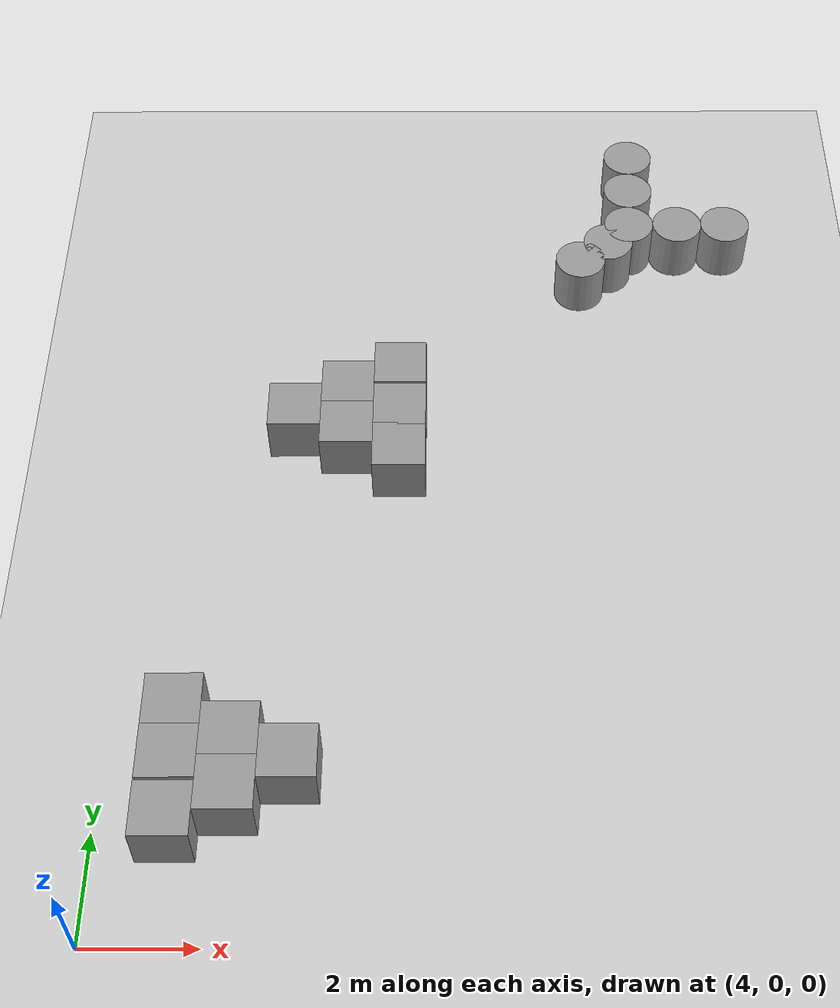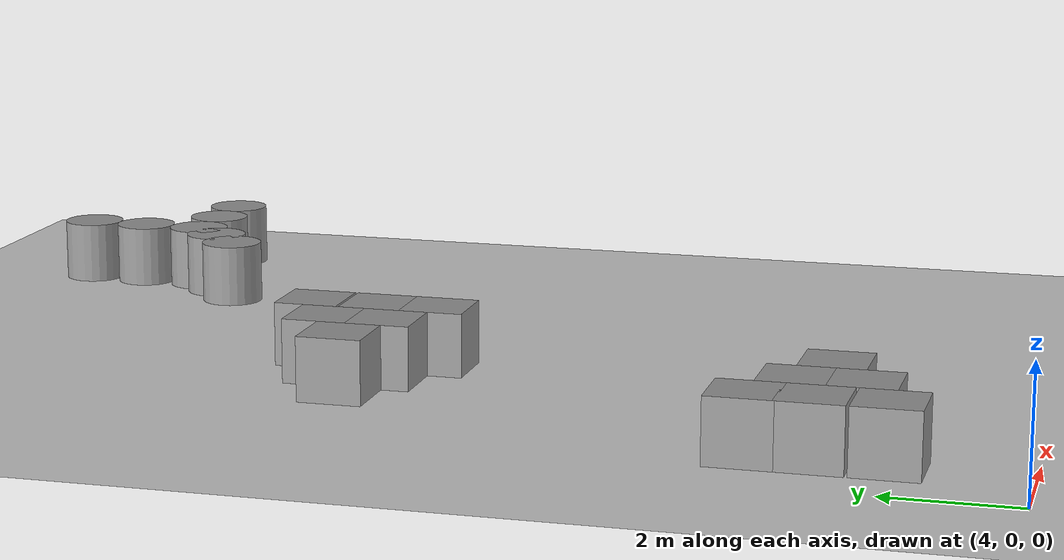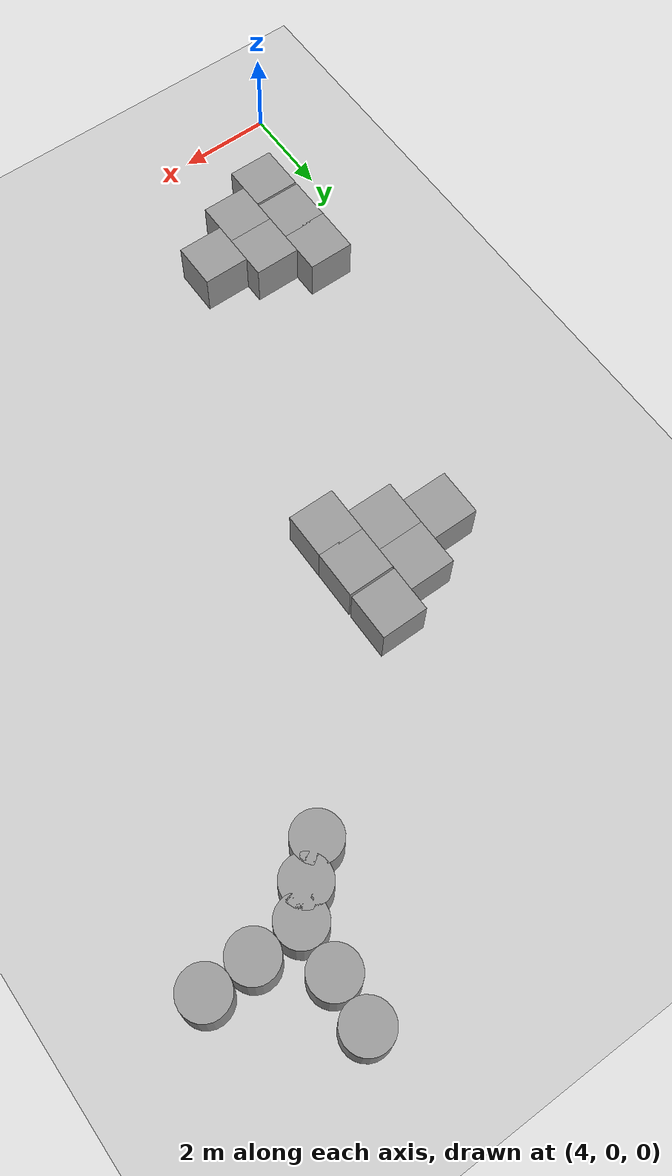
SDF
<sdf version="1.6">
 <world name="default">
  <model name="ground_plane">
   <static>1</static>
   <link name="link">
    <collision name="collision">
     <geometry><plane><normal>0 0 1</normal><size>100 100</size></plane></geometry>
     <surface><friction><ode><mu>100</mu><mu2>50</mu2></ode></friction></surface>
    </collision>
    <visual name="visual">
     <cast_shadows>0</cast_shadows>
     <geometry><plane><normal>0 0 1</normal><size>100 100</size></plane></geometry>
     <material>
      <script><uri>file://media/materials/scripts/gazebo.material</uri><name>Gazebo/Grey</name></script>
     </material>
    </visual>
   </link>
  </model>
  <model name="machine1">
   <link name="link_0">
    <pose>0.666667 -1.0048 0 0 -0 0</pose>
    <inertial>
     <mass>1</mass>
     <inertia>
      <ixx>0.166667</ixx>
      <ixy>0</ixy>
      <ixz>0</ixz>
      <iyy>0.166667</iyy>
      <iyz>0</iyz>
      <izz>0.166667</izz>
     </inertia>
    </inertial>
    <visual name="visual">
     <geometry><box><size>1 1 1</size></box></geometry>
     <material>
      <lighting>1</lighting>
      <script><uri>file://media/materials/scripts/gazebo.material</uri><name>Gazebo/Grey</name></script>
      <ambient>0.3 0.3 0.3 1</ambient>
      <diffuse>0.7 0.7 0.7 1</diffuse>
      <specular>0.01 0.01 0.01 1</specular>
      <emissive>0 0 0 1</emissive>
     </material>
    </visual>
    <collision name="collision">
     <geometry><box><size>1 1 1</size></box></geometry>
     <surface>
      <friction>
       <ode><mu>1</mu><mu2>1</mu2><fdir1>0 0 0</fdir1><slip1>0</slip1><slip2>0</slip2></ode>
       <torsional>
        <coefficient>1</coefficient>
        <patch_radius>0</patch_radius>
        <surface_radius>0</surface_radius>
        <use_patch_radius>1</use_patch_radius>
        <ode><slip>0</slip></ode>
       </torsional>
      </friction>
      <bounce><restitution_coefficient>0</restitution_coefficient><threshold>1e+06</threshold></bounce>
      <contact>
       <collide_without_contact>0</collide_without_contact>
       <collide_without_contact_bitmask>1</collide_without_contact_bitmask>
       <collide_bitmask>1</collide_bitmask>
       <ode>
        <soft_cfm>0</soft_cfm>
        <soft_erp>0.2</soft_erp>
        <kp>1e+13</kp>
        <kd>1</kd>
        <max_vel>0.01</max_vel>
        <min_depth>0</min_depth>
       </ode>
       <bullet>
        <split_impulse>1</split_impulse>
        <split_impulse_penetration_threshold>-0.01</split_impulse_penetration_threshold>
        <soft_cfm>0</soft_cfm>
        <soft_erp>0.2</soft_erp>
        <kp>1e+13</kp>
        <kd>1</kd>
       </bullet>
      </contact>
     </surface>
    </collision>
   </link>
   <link name="link_1">
    <pose>0.666667 -0.036067 0 0 -0 0</pose>
    <inertial>
     <mass>1</mass>
     <inertia>
      <ixx>0.166667</ixx>
      <ixy>0</ixy>
      <ixz>0</ixz>
      <iyy>0.166667</iyy>
      <iyz>0</iyz>
      <izz>0.166667</izz>
     </inertia>
    </inertial>
    <visual name="visual">
     <geometry><box><size>1 1 1</size></box></geometry>
     <material>
      <lighting>1</lighting>
      <script><uri>file://media/materials/scripts/gazebo.material</uri><name>Gazebo/Grey</name></script>
      <ambient>0.3 0.3 0.3 1</ambient>
      <diffuse>0.7 0.7 0.7 1</diffuse>
      <specular>0.01 0.01 0.01 1</specular>
      <emissive>0 0 0 1</emissive>
     </material>
    </visual>
    <collision name="collision">
     <geometry><box><size>1 1 1</size></box></geometry>
     <surface>
      <friction>
       <ode><mu>1</mu><mu2>1</mu2><fdir1>0 0 0</fdir1><slip1>0</slip1><slip2>0</slip2></ode>
       <torsional>
        <coefficient>1</coefficient>
        <patch_radius>0</patch_radius>
        <surface_radius>0</surface_radius>
        <use_patch_radius>1</use_patch_radius>
        <ode><slip>0</slip></ode>
       </torsional>
      </friction>
      <bounce><restitution_coefficient>0</restitution_coefficient><threshold>1e+06</threshold></bounce>
      <contact>
       <collide_without_contact>0</collide_without_contact>
       <collide_without_contact_bitmask>1</collide_without_contact_bitmask>
       <collide_bitmask>1</collide_bitmask>
       <ode>
        <soft_cfm>0</soft_cfm>
        <soft_erp>0.2</soft_erp>
        <kp>1e+13</kp>
        <kd>1</kd>
        <max_vel>0.01</max_vel>
        <min_depth>0</min_depth>
       </ode>
       <bullet>
        <split_impulse>1</split_impulse>
        <split_impulse_penetration_threshold>-0.01</split_impulse_penetration_threshold>
        <soft_cfm>0</soft_cfm>
        <soft_erp>0.2</soft_erp>
        <kp>1e+13</kp>
        <kd>1</kd>
       </bullet>
      </contact>
     </surface>
    </collision>
   </link>
   <link name="link_2">
    <pose>0.666667 1.00722 0 0 -0 0</pose>
    <inertial>
     <mass>1</mass>
     <inertia>
      <ixx>0.166667</ixx>
      <ixy>0</ixy>
      <ixz>0</ixz>
      <iyy>0.166667</iyy>
      <iyz>0</iyz>
      <izz>0.166667</izz>
     </inertia>
    </inertial>
    <visual name="visual">
     <geometry><box><size>1 1 1</size></box></geometry>
     <material>
      <lighting>1</lighting>
      <script><uri>file://media/materials/scripts/gazebo.material</uri><name>Gazebo/Grey</name></script>
      <ambient>0.3 0.3 0.3 1</ambient>
      <diffuse>0.7 0.7 0.7 1</diffuse>
      <specular>0.01 0.01 0.01 1</specular>
      <emissive>0 0 0 1</emissive>
     </material>
    </visual>
    <collision name="collision">
     <geometry><box><size>1 1 1</size></box></geometry>
     <surface>
      <friction>
       <ode><mu>1</mu><mu2>1</mu2><fdir1>0 0 0</fdir1><slip1>0</slip1><slip2>0</slip2></ode>
       <torsional>
        <coefficient>1</coefficient>
        <patch_radius>0</patch_radius>
        <surface_radius>0</surface_radius>
        <use_patch_radius>1</use_patch_radius>
        <ode><slip>0</slip></ode>
       </torsional>
      </friction>
      <bounce><restitution_coefficient>0</restitution_coefficient><threshold>1e+06</threshold></bounce>
      <contact>
       <collide_without_contact>0</collide_without_contact>
       <collide_without_contact_bitmask>1</collide_without_contact_bitmask>
       <collide_bitmask>1</collide_bitmask>
       <ode>
        <soft_cfm>0</soft_cfm>
        <soft_erp>0.2</soft_erp>
        <kp>1e+13</kp>
        <kd>1</kd>
        <max_vel>0.01</max_vel>
        <min_depth>0</min_depth>
       </ode>
       <bullet>
        <split_impulse>1</split_impulse>
        <split_impulse_penetration_threshold>-0.01</split_impulse_penetration_threshold>
        <soft_cfm>0</soft_cfm>
        <soft_erp>0.2</soft_erp>
        <kp>1e+13</kp>
        <kd>1</kd>
       </bullet>
      </contact>
     </surface>
    </collision>
   </link>
   <link name="link_3">
    <pose>-0.333333 0.53488 0 0 -0 0</pose>
    <inertial>
     <mass>1</mass>
     <inertia>
      <ixx>0.166667</ixx>
      <ixy>0</ixy>
      <ixz>0</ixz>
      <iyy>0.166667</iyy>
      <iyz>0</iyz>
      <izz>0.166667</izz>
     </inertia>
    </inertial>
    <visual name="visual">
     <geometry><box><size>1 1 1</size></box></geometry>
     <material>
      <lighting>1</lighting>
      <script><uri>file://media/materials/scripts/gazebo.material</uri><name>Gazebo/Grey</name></script>
      <ambient>0.3 0.3 0.3 1</ambient>
      <diffuse>0.7 0.7 0.7 1</diffuse>
      <specular>0.01 0.01 0.01 1</specular>
      <emissive>0 0 0 1</emissive>
     </material>
    </visual>
    <collision name="collision">
     <geometry><box><size>1 1 1</size></box></geometry>
     <surface>
      <friction>
       <ode><mu>1</mu><mu2>1</mu2><fdir1>0 0 0</fdir1><slip1>0</slip1><slip2>0</slip2></ode>
       <torsional>
        <coefficient>1</coefficient>
        <patch_radius>0</patch_radius>
        <surface_radius>0</surface_radius>
        <use_patch_radius>1</use_patch_radius>
        <ode><slip>0</slip></ode>
       </torsional>
      </friction>
      <bounce><restitution_coefficient>0</restitution_coefficient><threshold>1e+06</threshold></bounce>
      <contact>
       <collide_without_contact>0</collide_without_contact>
       <collide_without_contact_bitmask>1</collide_without_contact_bitmask>
       <collide_bitmask>1</collide_bitmask>
       <ode>
        <soft_cfm>0</soft_cfm>
        <soft_erp>0.2</soft_erp>
        <kp>1e+13</kp>
        <kd>1</kd>
        <max_vel>0.01</max_vel>
        <min_depth>0</min_depth>
       </ode>
       <bullet>
        <split_impulse>1</split_impulse>
        <split_impulse_penetration_threshold>-0.01</split_impulse_penetration_threshold>
        <soft_cfm>0</soft_cfm>
        <soft_erp>0.2</soft_erp>
        <kp>1e+13</kp>
        <kd>1</kd>
       </bullet>
      </contact>
     </surface>
    </collision>
   </link>
   <link name="link_4">
    <pose>-0.333333 -0.46512 0 0 -0 0</pose>
    <inertial>
     <mass>1</mass>
     <inertia>
      <ixx>0.166667</ixx>
      <ixy>0</ixy>
      <ixz>0</ixz>
      <iyy>0.166667</iyy>
      <iyz>0</iyz>
      <izz>0.166667</izz>
     </inertia>
    </inertial>
    <visual name="visual">
     <geometry><box><size>1 1 1</size></box></geometry>
     <material>
      <lighting>1</lighting>
      <script><uri>file://media/materials/scripts/gazebo.material</uri><name>Gazebo/Grey</name></script>
      <ambient>0.3 0.3 0.3 1</ambient>
      <diffuse>0.7 0.7 0.7 1</diffuse>
      <specular>0.01 0.01 0.01 1</specular>
      <emissive>0 0 0 1</emissive>
     </material>
    </visual>
    <collision name="collision">
     <geometry><box><size>1 1 1</size></box></geometry>
     <surface>
      <friction>
       <ode><mu>1</mu><mu2>1</mu2><fdir1>0 0 0</fdir1><slip1>0</slip1><slip2>0</slip2></ode>
       <torsional>
        <coefficient>1</coefficient>
        <patch_radius>0</patch_radius>
        <surface_radius>0</surface_radius>
        <use_patch_radius>1</use_patch_radius>
        <ode><slip>0</slip></ode>
       </torsional>
      </friction>
      <bounce><restitution_coefficient>0</restitution_coefficient><threshold>1e+06</threshold></bounce>
      <contact>
       <collide_without_contact>0</collide_without_contact>
       <collide_without_contact_bitmask>1</collide_without_contact_bitmask>
       <collide_bitmask>1</collide_bitmask>
       <ode>
        <soft_cfm>0</soft_cfm>
        <soft_erp>0.2</soft_erp>
        <kp>1e+13</kp>
        <kd>1</kd>
        <max_vel>0.01</max_vel>
        <min_depth>0</min_depth>
       </ode>
       <bullet>
        <split_impulse>1</split_impulse>
        <split_impulse_penetration_threshold>-0.01</split_impulse_penetration_threshold>
        <soft_cfm>0</soft_cfm>
        <soft_erp>0.2</soft_erp>
        <kp>1e+13</kp>
        <kd>1</kd>
       </bullet>
      </contact>
     </surface>
    </collision>
   </link>
   <link name="link_5">
    <pose>-1.33333 -0.036128 0 0 -0 0</pose>
    <inertial>
     <mass>1</mass>
     <inertia>
      <ixx>0.166667</ixx>
      <ixy>0</ixy>
      <ixz>0</ixz>
      <iyy>0.166667</iyy>
      <iyz>0</iyz>
      <izz>0.166667</izz>
     </inertia>
    </inertial>
    <visual name="visual">
     <geometry><box><size>1 1 1</size></box></geometry>
     <material>
      <lighting>1</lighting>
      <script><uri>file://media/materials/scripts/gazebo.material</uri><name>Gazebo/Grey</name></script>
      <ambient>0.3 0.3 0.3 1</ambient>
      <diffuse>0.7 0.7 0.7 1</diffuse>
      <specular>0.01 0.01 0.01 1</specular>
      <emissive>0 0 0 1</emissive>
     </material>
    </visual>
    <collision name="collision">
     <geometry><box><size>1 1 1</size></box></geometry>
     <surface>
      <friction>
       <ode><mu>1</mu><mu2>1</mu2><fdir1>0 0 0</fdir1><slip1>0</slip1><slip2>0</slip2></ode>
       <torsional>
        <coefficient>1</coefficient>
        <patch_radius>0</patch_radius>
        <surface_radius>0</surface_radius>
        <use_patch_radius>1</use_patch_radius>
        <ode><slip>0</slip></ode>
       </torsional>
      </friction>
      <bounce><restitution_coefficient>0</restitution_coefficient><threshold>1e+06</threshold></bounce>
      <contact>
       <collide_without_contact>0</collide_without_contact>
       <collide_without_contact_bitmask>1</collide_without_contact_bitmask>
       <collide_bitmask>1</collide_bitmask>
       <ode>
        <soft_cfm>0</soft_cfm>
        <soft_erp>0.2</soft_erp>
        <kp>1e+13</kp>
        <kd>1</kd>
        <max_vel>0.01</max_vel>
        <min_depth>0</min_depth>
       </ode>
       <bullet>
        <split_impulse>1</split_impulse>
        <split_impulse_penetration_threshold>-0.01</split_impulse_penetration_threshold>
        <soft_cfm>0</soft_cfm>
        <soft_erp>0.2</soft_erp>
        <kp>1e+13</kp>
        <kd>1</kd>
       </bullet>
      </contact>
     </surface>
    </collision>
   </link>
   <static>0</static>
   <pose>8.33333 10.4651 0.5 0 -0 0</pose>
  </model>
  <model name="machine5_clone">
   <link name="link_25">
    <pose>1.75317 -0.214523 0 0 -0 0</pose>
    <inertial>
     <mass>1</mass>
     <inertia><ixx>0.145833</ixx><ixy>0</ixy><ixz>0</ixz><iyy>0.145833</iyy><iyz>0</iyz><izz>0.125</izz></inertia>
    </inertial>
    <visual name="visual">
     <geometry><cylinder><radius>0.5</radius><length>1</length></cylinder></geometry>
     <material>
      <lighting>1</lighting>
      <script><uri>file://media/materials/scripts/gazebo.material</uri><name>Gazebo/Grey</name></script>
      <ambient>0.3 0.3 0.3 1</ambient>
      <diffuse>0.7 0.7 0.7 1</diffuse>
      <specular>0.01 0.01 0.01 1</specular>
      <emissive>0 0 0 1</emissive>
     </material>
    </visual>
    <collision name="collision">
     <geometry><cylinder><radius>0.5</radius><length>1</length></cylinder></geometry>
     <surface>
      <friction>
       <ode><mu>1</mu><mu2>1</mu2><fdir1>0 0 0</fdir1><slip1>0</slip1><slip2>0</slip2></ode>
       <torsional>
        <coefficient>1</coefficient>
        <patch_radius>0</patch_radius>
        <surface_radius>0</surface_radius>
        <use_patch_radius>1</use_patch_radius>
        <ode><slip>0</slip></ode>
       </torsional>
      </friction>
      <bounce><restitution_coefficient>0</restitution_coefficient><threshold>1e+06</threshold></bounce>
      <contact>
       <collide_without_contact>0</collide_without_contact>
       <collide_without_contact_bitmask>1</collide_without_contact_bitmask>
       <collide_bitmask>1</collide_bitmask>
       <ode>
        <soft_cfm>0</soft_cfm>
        <soft_erp>0.2</soft_erp>
        <kp>1e+13</kp>
        <kd>1</kd>
        <max_vel>0.01</max_vel>
        <min_depth>0</min_depth>
       </ode>
       <bullet>
        <split_impulse>1</split_impulse>
        <split_impulse_penetration_threshold>-0.01</split_impulse_penetration_threshold>
        <soft_cfm>0</soft_cfm>
        <soft_erp>0.2</soft_erp>
        <kp>1e+13</kp>
        <kd>1</kd>
       </bullet>
      </contact>
     </surface>
    </collision>
   </link>
   <link name="link_26">
    <pose>0.765019 -0.214523 0 0 -0 0</pose>
    <inertial>
     <mass>1</mass>
     <inertia><ixx>0.145833</ixx><ixy>0</ixy><ixz>0</ixz><iyy>0.145833</iyy><iyz>0</iyz><izz>0.125</izz></inertia>
    </inertial>
    <visual name="visual">
     <geometry><cylinder><radius>0.5</radius><length>1</length></cylinder></geometry>
     <material>
      <lighting>1</lighting>
      <script><uri>file://media/materials/scripts/gazebo.material</uri><name>Gazebo/Grey</name></script>
      <ambient>0.3 0.3 0.3 1</ambient>
      <diffuse>0.7 0.7 0.7 1</diffuse>
      <specular>0.01 0.01 0.01 1</specular>
      <emissive>0 0 0 1</emissive>
     </material>
    </visual>
    <collision name="collision">
     <geometry><cylinder><radius>0.5</radius><length>1</length></cylinder></geometry>
     <surface>
      <friction>
       <ode><mu>1</mu><mu2>1</mu2><fdir1>0 0 0</fdir1><slip1>0</slip1><slip2>0</slip2></ode>
       <torsional>
        <coefficient>1</coefficient>
        <patch_radius>0</patch_radius>
        <surface_radius>0</surface_radius>
        <use_patch_radius>1</use_patch_radius>
        <ode><slip>0</slip></ode>
       </torsional>
      </friction>
      <bounce><restitution_coefficient>0</restitution_coefficient><threshold>1e+06</threshold></bounce>
      <contact>
       <collide_without_contact>0</collide_without_contact>
       <collide_without_contact_bitmask>1</collide_without_contact_bitmask>
       <collide_bitmask>1</collide_bitmask>
       <ode>
        <soft_cfm>0</soft_cfm>
        <soft_erp>0.2</soft_erp>
        <kp>1e+13</kp>
        <kd>1</kd>
        <max_vel>0.01</max_vel>
        <min_depth>0</min_depth>
       </ode>
       <bullet>
        <split_impulse>1</split_impulse>
        <split_impulse_penetration_threshold>-0.01</split_impulse_penetration_threshold>
        <soft_cfm>0</soft_cfm>
        <soft_erp>0.2</soft_erp>
        <kp>1e+13</kp>
        <kd>1</kd>
       </bullet>
      </contact>
     </surface>
    </collision>
   </link>
   <link name="link_27">
    <pose>-0.229545 -0.214523 0 0 -0 0</pose>
    <inertial>
     <mass>1</mass>
     <inertia><ixx>0.145833</ixx><ixy>0</ixy><ixz>0</ixz><iyy>0.145833</iyy><iyz>0</iyz><izz>0.125</izz></inertia>
    </inertial>
    <visual name="visual">
     <geometry><cylinder><radius>0.5</radius><length>1</length></cylinder></geometry>
     <material>
      <lighting>1</lighting>
      <script><uri>file://media/materials/scripts/gazebo.material</uri><name>Gazebo/Grey</name></script>
      <ambient>0.3 0.3 0.3 1</ambient>
      <diffuse>0.7 0.7 0.7 1</diffuse>
      <specular>0.01 0.01 0.01 1</specular>
      <emissive>0 0 0 1</emissive>
     </material>
    </visual>
    <collision name="collision">
     <geometry><cylinder><radius>0.5</radius><length>1</length></cylinder></geometry>
     <surface>
      <friction>
       <ode><mu>1</mu><mu2>1</mu2><fdir1>0 0 0</fdir1><slip1>0</slip1><slip2>0</slip2></ode>
       <torsional>
        <coefficient>1</coefficient>
        <patch_radius>0</patch_radius>
        <surface_radius>0</surface_radius>
        <use_patch_radius>1</use_patch_radius>
        <ode><slip>0</slip></ode>
       </torsional>
      </friction>
      <bounce><restitution_coefficient>0</restitution_coefficient><threshold>1e+06</threshold></bounce>
      <contact>
       <collide_without_contact>0</collide_without_contact>
       <collide_without_contact_bitmask>1</collide_without_contact_bitmask>
       <collide_bitmask>1</collide_bitmask>
       <ode>
        <soft_cfm>0</soft_cfm>
        <soft_erp>0.2</soft_erp>
        <kp>1e+13</kp>
        <kd>1</kd>
        <max_vel>0.01</max_vel>
        <min_depth>0</min_depth>
       </ode>
       <bullet>
        <split_impulse>1</split_impulse>
        <split_impulse_penetration_threshold>-0.01</split_impulse_penetration_threshold>
        <soft_cfm>0</soft_cfm>
        <soft_erp>0.2</soft_erp>
        <kp>1e+13</kp>
        <kd>1</kd>
       </bullet>
      </contact>
     </surface>
    </collision>
   </link>
   <link name="link_28">
    <pose>-0.194579 0.785477 0 0 -0 0</pose>
    <inertial>
     <mass>1</mass>
     <inertia><ixx>0.145833</ixx><ixy>0</ixy><ixz>0</ixz><iyy>0.145833</iyy><iyz>0</iyz><izz>0.125</izz></inertia>
    </inertial>
    <visual name="visual">
     <geometry><cylinder><radius>0.5</radius><length>1</length></cylinder></geometry>
     <material>
      <lighting>1</lighting>
      <script><uri>file://media/materials/scripts/gazebo.material</uri><name>Gazebo/Grey</name></script>
      <ambient>0.3 0.3 0.3 1</ambient>
      <diffuse>0.7 0.7 0.7 1</diffuse>
      <specular>0.01 0.01 0.01 1</specular>
      <emissive>0 0 0 1</emissive>
     </material>
    </visual>
    <collision name="collision">
     <geometry><cylinder><radius>0.5</radius><length>1</length></cylinder></geometry>
     <surface>
      <friction>
       <ode><mu>1</mu><mu2>1</mu2><fdir1>0 0 0</fdir1><slip1>0</slip1><slip2>0</slip2></ode>
       <torsional>
        <coefficient>1</coefficient>
        <patch_radius>0</patch_radius>
        <surface_radius>0</surface_radius>
        <use_patch_radius>1</use_patch_radius>
        <ode><slip>0</slip></ode>
       </torsional>
      </friction>
      <bounce><restitution_coefficient>0</restitution_coefficient><threshold>1e+06</threshold></bounce>
      <contact>
       <collide_without_contact>0</collide_without_contact>
       <collide_without_contact_bitmask>1</collide_without_contact_bitmask>
       <collide_bitmask>1</collide_bitmask>
       <ode>
        <soft_cfm>0</soft_cfm>
        <soft_erp>0.2</soft_erp>
        <kp>1e+13</kp>
        <kd>1</kd>
        <max_vel>0.01</max_vel>
        <min_depth>0</min_depth>
       </ode>
       <bullet>
        <split_impulse>1</split_impulse>
        <split_impulse_penetration_threshold>-0.01</split_impulse_penetration_threshold>
        <soft_cfm>0</soft_cfm>
        <soft_erp>0.2</soft_erp>
        <kp>1e+13</kp>
        <kd>1</kd>
       </bullet>
      </contact>
     </surface>
    </collision>
   </link>
   <link name="link_29">
    <pose>-0.141509 1.78548 0 0 -0 0</pose>
    <inertial>
     <mass>1</mass>
     <inertia><ixx>0.145833</ixx><ixy>0</ixy><ixz>0</ixz><iyy>0.145833</iyy><iyz>0</iyz><izz>0.125</izz></inertia>
    </inertial>
    <visual name="visual">
     <geometry><cylinder><radius>0.5</radius><length>1</length></cylinder></geometry>
     <material>
      <lighting>1</lighting>
      <script><uri>file://media/materials/scripts/gazebo.material</uri><name>Gazebo/Grey</name></script>
      <ambient>0.3 0.3 0.3 1</ambient>
      <diffuse>0.7 0.7 0.7 1</diffuse>
      <specular>0.01 0.01 0.01 1</specular>
      <emissive>0 0 0 1</emissive>
     </material>
    </visual>
    <collision name="collision">
     <geometry><cylinder><radius>0.5</radius><length>1</length></cylinder></geometry>
     <surface>
      <friction>
       <ode><mu>1</mu><mu2>1</mu2><fdir1>0 0 0</fdir1><slip1>0</slip1><slip2>0</slip2></ode>
       <torsional>
        <coefficient>1</coefficient>
        <patch_radius>0</patch_radius>
        <surface_radius>0</surface_radius>
        <use_patch_radius>1</use_patch_radius>
        <ode><slip>0</slip></ode>
       </torsional>
      </friction>
      <bounce><restitution_coefficient>0</restitution_coefficient><threshold>1e+06</threshold></bounce>
      <contact>
       <collide_without_contact>0</collide_without_contact>
       <collide_without_contact_bitmask>1</collide_without_contact_bitmask>
       <collide_bitmask>1</collide_bitmask>
       <ode>
        <soft_cfm>0</soft_cfm>
        <soft_erp>0.2</soft_erp>
        <kp>1e+13</kp>
        <kd>1</kd>
        <max_vel>0.01</max_vel>
        <min_depth>0</min_depth>
       </ode>
       <bullet>
        <split_impulse>1</split_impulse>
        <split_impulse_penetration_threshold>-0.01</split_impulse_penetration_threshold>
        <soft_cfm>0</soft_cfm>
        <soft_erp>0.2</soft_erp>
        <kp>1e+13</kp>
        <kd>1</kd>
       </bullet>
      </contact>
     </surface>
    </collision>
   </link>
   <link name="link_30">
    <pose>-0.682121 -0.712863 0 0 -0 0</pose>
    <inertial>
     <mass>1</mass>
     <inertia><ixx>0.145833</ixx><ixy>0</ixy><ixz>0</ixz><iyy>0.145833</iyy><iyz>0</iyz><izz>0.125</izz></inertia>
    </inertial>
    <visual name="visual">
     <geometry><cylinder><radius>0.5</radius><length>1</length></cylinder></geometry>
     <material>
      <lighting>1</lighting>
      <script><uri>file://media/materials/scripts/gazebo.material</uri><name>Gazebo/Grey</name></script>
      <ambient>0.3 0.3 0.3 1</ambient>
      <diffuse>0.7 0.7 0.7 1</diffuse>
      <specular>0.01 0.01 0.01 1</specular>
      <emissive>0 0 0 1</emissive>
     </material>
    </visual>
    <collision name="collision">
     <geometry><cylinder><radius>0.5</radius><length>1</length></cylinder></geometry>
     <surface>
      <friction>
       <ode><mu>1</mu><mu2>1</mu2><fdir1>0 0 0</fdir1><slip1>0</slip1><slip2>0</slip2></ode>
       <torsional>
        <coefficient>1</coefficient>
        <patch_radius>0</patch_radius>
        <surface_radius>0</surface_radius>
        <use_patch_radius>1</use_patch_radius>
        <ode><slip>0</slip></ode>
       </torsional>
      </friction>
      <bounce><restitution_coefficient>0</restitution_coefficient><threshold>1e+06</threshold></bounce>
      <contact>
       <collide_without_contact>0</collide_without_contact>
       <collide_without_contact_bitmask>1</collide_without_contact_bitmask>
       <collide_bitmask>1</collide_bitmask>
       <ode>
        <soft_cfm>0</soft_cfm>
        <soft_erp>0.2</soft_erp>
        <kp>1e+13</kp>
        <kd>1</kd>
        <max_vel>0.01</max_vel>
        <min_depth>0</min_depth>
       </ode>
       <bullet>
        <split_impulse>1</split_impulse>
        <split_impulse_penetration_threshold>-0.01</split_impulse_penetration_threshold>
        <soft_cfm>0</soft_cfm>
        <soft_erp>0.2</soft_erp>
        <kp>1e+13</kp>
        <kd>1</kd>
       </bullet>
      </contact>
     </surface>
    </collision>
   </link>
   <link name="link_31">
    <pose>-1.27043 -1.21452 0 0 -0 0</pose>
    <inertial>
     <mass>1</mass>
     <inertia><ixx>0.145833</ixx><ixy>0</ixy><ixz>0</ixz><iyy>0.145833</iyy><iyz>0</iyz><izz>0.125</izz></inertia>
    </inertial>
    <visual name="visual">
     <geometry><cylinder><radius>0.5</radius><length>1</length></cylinder></geometry>
     <material>
      <lighting>1</lighting>
      <script><uri>file://media/materials/scripts/gazebo.material</uri><name>Gazebo/Grey</name></script>
      <ambient>0.3 0.3 0.3 1</ambient>
      <diffuse>0.7 0.7 0.7 1</diffuse>
      <specular>0.01 0.01 0.01 1</specular>
      <emissive>0 0 0 1</emissive>
     </material>
    </visual>
    <collision name="collision">
     <geometry><cylinder><radius>0.5</radius><length>1</length></cylinder></geometry>
     <surface>
      <friction>
       <ode><mu>1</mu><mu2>1</mu2><fdir1>0 0 0</fdir1><slip1>0</slip1><slip2>0</slip2></ode>
       <torsional>
        <coefficient>1</coefficient>
        <patch_radius>0</patch_radius>
        <surface_radius>0</surface_radius>
        <use_patch_radius>1</use_patch_radius>
        <ode><slip>0</slip></ode>
       </torsional>
      </friction>
      <bounce><restitution_coefficient>0</restitution_coefficient><threshold>1e+06</threshold></bounce>
      <contact>
       <collide_without_contact>0</collide_without_contact>
       <collide_without_contact_bitmask>1</collide_without_contact_bitmask>
       <collide_bitmask>1</collide_bitmask>
       <ode>
        <soft_cfm>0</soft_cfm>
        <soft_erp>0.2</soft_erp>
        <kp>1e+13</kp>
        <kd>1</kd>
        <max_vel>0.01</max_vel>
        <min_depth>0</min_depth>
       </ode>
       <bullet>
        <split_impulse>1</split_impulse>
        <split_impulse_penetration_threshold>-0.01</split_impulse_penetration_threshold>
        <soft_cfm>0</soft_cfm>
        <soft_erp>0.2</soft_erp>
        <kp>1e+13</kp>
        <kd>1</kd>
       </bullet>
      </contact>
     </surface>
    </collision>
   </link>
   <static>0</static>
   <pose>13.8947 15.4355 0.499942 0 -0 0</pose>
  </model>
  <model name="machine1_0">
   <link name="link_0">
    <pose>0.666667 -1.0048 0 0 -0 0</pose>
    <inertial>
     <mass>1</mass>
     <inertia>
      <ixx>0.166667</ixx>
      <ixy>0</ixy>
      <ixz>0</ixz>
      <iyy>0.166667</iyy>
      <iyz>0</iyz>
      <izz>0.166667</izz>
     </inertia>
    </inertial>
    <visual name="visual">
     <geometry><box><size>1 1 1</size></box></geometry>
     <material>
      <lighting>1</lighting>
      <script><uri>file://media/materials/scripts/gazebo.material</uri><name>Gazebo/Grey</name></script>
      <ambient>0.3 0.3 0.3 1</ambient>
      <diffuse>0.7 0.7 0.7 1</diffuse>
      <specular>0.01 0.01 0.01 1</specular>
      <emissive>0 0 0 1</emissive>
     </material>
    </visual>
    <collision name="collision">
     <geometry><box><size>1 1 1</size></box></geometry>
     <surface>
      <friction>
       <ode><mu>1</mu><mu2>1</mu2><fdir1>0 0 0</fdir1><slip1>0</slip1><slip2>0</slip2></ode>
       <torsional>
        <coefficient>1</coefficient>
        <patch_radius>0</patch_radius>
        <surface_radius>0</surface_radius>
        <use_patch_radius>1</use_patch_radius>
        <ode><slip>0</slip></ode>
       </torsional>
      </friction>
      <bounce><restitution_coefficient>0</restitution_coefficient><threshold>1e+06</threshold></bounce>
      <contact>
       <collide_without_contact>0</collide_without_contact>
       <collide_without_contact_bitmask>1</collide_without_contact_bitmask>
       <collide_bitmask>1</collide_bitmask>
       <ode>
        <soft_cfm>0</soft_cfm>
        <soft_erp>0.2</soft_erp>
        <kp>1e+13</kp>
        <kd>1</kd>
        <max_vel>0.01</max_vel>
        <min_depth>0</min_depth>
       </ode>
       <bullet>
        <split_impulse>1</split_impulse>
        <split_impulse_penetration_threshold>-0.01</split_impulse_penetration_threshold>
        <soft_cfm>0</soft_cfm>
        <soft_erp>0.2</soft_erp>
        <kp>1e+13</kp>
        <kd>1</kd>
       </bullet>
      </contact>
     </surface>
    </collision>
   </link>
   <link name="link_1">
    <pose>0.666667 -0.036067 0 0 -0 0</pose>
    <inertial>
     <mass>1</mass>
     <inertia>
      <ixx>0.166667</ixx>
      <ixy>0</ixy>
      <ixz>0</ixz>
      <iyy>0.166667</iyy>
      <iyz>0</iyz>
      <izz>0.166667</izz>
     </inertia>
    </inertial>
    <visual name="visual">
     <geometry><box><size>1 1 1</size></box></geometry>
     <material>
      <lighting>1</lighting>
      <script><uri>file://media/materials/scripts/gazebo.material</uri><name>Gazebo/Grey</name></script>
      <ambient>0.3 0.3 0.3 1</ambient>
      <diffuse>0.7 0.7 0.7 1</diffuse>
      <specular>0.01 0.01 0.01 1</specular>
      <emissive>0 0 0 1</emissive>
     </material>
    </visual>
    <collision name="collision">
     <geometry><box><size>1 1 1</size></box></geometry>
     <surface>
      <friction>
       <ode><mu>1</mu><mu2>1</mu2><fdir1>0 0 0</fdir1><slip1>0</slip1><slip2>0</slip2></ode>
       <torsional>
        <coefficient>1</coefficient>
        <patch_radius>0</patch_radius>
        <surface_radius>0</surface_radius>
        <use_patch_radius>1</use_patch_radius>
        <ode><slip>0</slip></ode>
       </torsional>
      </friction>
      <bounce><restitution_coefficient>0</restitution_coefficient><threshold>1e+06</threshold></bounce>
      <contact>
       <collide_without_contact>0</collide_without_contact>
       <collide_without_contact_bitmask>1</collide_without_contact_bitmask>
       <collide_bitmask>1</collide_bitmask>
       <ode>
        <soft_cfm>0</soft_cfm>
        <soft_erp>0.2</soft_erp>
        <kp>1e+13</kp>
        <kd>1</kd>
        <max_vel>0.01</max_vel>
        <min_depth>0</min_depth>
       </ode>
       <bullet>
        <split_impulse>1</split_impulse>
        <split_impulse_penetration_threshold>-0.01</split_impulse_penetration_threshold>
        <soft_cfm>0</soft_cfm>
        <soft_erp>0.2</soft_erp>
        <kp>1e+13</kp>
        <kd>1</kd>
       </bullet>
      </contact>
     </surface>
    </collision>
   </link>
   <link name="link_2">
    <pose>0.666667 1.00722 0 0 -0 0</pose>
    <inertial>
     <mass>1</mass>
     <inertia>
      <ixx>0.166667</ixx>
      <ixy>0</ixy>
      <ixz>0</ixz>
      <iyy>0.166667</iyy>
      <iyz>0</iyz>
      <izz>0.166667</izz>
     </inertia>
    </inertial>
    <visual name="visual">
     <geometry><box><size>1 1 1</size></box></geometry>
     <material>
      <lighting>1</lighting>
      <script><uri>file://media/materials/scripts/gazebo.material</uri><name>Gazebo/Grey</name></script>
      <ambient>0.3 0.3 0.3 1</ambient>
      <diffuse>0.7 0.7 0.7 1</diffuse>
      <specular>0.01 0.01 0.01 1</specular>
      <emissive>0 0 0 1</emissive>
     </material>
    </visual>
    <collision name="collision">
     <geometry><box><size>1 1 1</size></box></geometry>
     <surface>
      <friction>
       <ode><mu>1</mu><mu2>1</mu2><fdir1>0 0 0</fdir1><slip1>0</slip1><slip2>0</slip2></ode>
       <torsional>
        <coefficient>1</coefficient>
        <patch_radius>0</patch_radius>
        <surface_radius>0</surface_radius>
        <use_patch_radius>1</use_patch_radius>
        <ode><slip>0</slip></ode>
       </torsional>
      </friction>
      <bounce><restitution_coefficient>0</restitution_coefficient><threshold>1e+06</threshold></bounce>
      <contact>
       <collide_without_contact>0</collide_without_contact>
       <collide_without_contact_bitmask>1</collide_without_contact_bitmask>
       <collide_bitmask>1</collide_bitmask>
       <ode>
        <soft_cfm>0</soft_cfm>
        <soft_erp>0.2</soft_erp>
        <kp>1e+13</kp>
        <kd>1</kd>
        <max_vel>0.01</max_vel>
        <min_depth>0</min_depth>
       </ode>
       <bullet>
        <split_impulse>1</split_impulse>
        <split_impulse_penetration_threshold>-0.01</split_impulse_penetration_threshold>
        <soft_cfm>0</soft_cfm>
        <soft_erp>0.2</soft_erp>
        <kp>1e+13</kp>
        <kd>1</kd>
       </bullet>
      </contact>
     </surface>
    </collision>
   </link>
   <link name="link_3">
    <pose>-0.333333 0.53488 0 0 -0 0</pose>
    <inertial>
     <mass>1</mass>
     <inertia>
      <ixx>0.166667</ixx>
      <ixy>0</ixy>
      <ixz>0</ixz>
      <iyy>0.166667</iyy>
      <iyz>0</iyz>
      <izz>0.166667</izz>
     </inertia>
    </inertial>
    <visual name="visual">
     <geometry><box><size>1 1 1</size></box></geometry>
     <material>
      <lighting>1</lighting>
      <script><uri>file://media/materials/scripts/gazebo.material</uri><name>Gazebo/Grey</name></script>
      <ambient>0.3 0.3 0.3 1</ambient>
      <diffuse>0.7 0.7 0.7 1</diffuse>
      <specular>0.01 0.01 0.01 1</specular>
      <emissive>0 0 0 1</emissive>
     </material>
    </visual>
    <collision name="collision">
     <geometry><box><size>1 1 1</size></box></geometry>
     <surface>
      <friction>
       <ode><mu>1</mu><mu2>1</mu2><fdir1>0 0 0</fdir1><slip1>0</slip1><slip2>0</slip2></ode>
       <torsional>
        <coefficient>1</coefficient>
        <patch_radius>0</patch_radius>
        <surface_radius>0</surface_radius>
        <use_patch_radius>1</use_patch_radius>
        <ode><slip>0</slip></ode>
       </torsional>
      </friction>
      <bounce><restitution_coefficient>0</restitution_coefficient><threshold>1e+06</threshold></bounce>
      <contact>
       <collide_without_contact>0</collide_without_contact>
       <collide_without_contact_bitmask>1</collide_without_contact_bitmask>
       <collide_bitmask>1</collide_bitmask>
       <ode>
        <soft_cfm>0</soft_cfm>
        <soft_erp>0.2</soft_erp>
        <kp>1e+13</kp>
        <kd>1</kd>
        <max_vel>0.01</max_vel>
        <min_depth>0</min_depth>
       </ode>
       <bullet>
        <split_impulse>1</split_impulse>
        <split_impulse_penetration_threshold>-0.01</split_impulse_penetration_threshold>
        <soft_cfm>0</soft_cfm>
        <soft_erp>0.2</soft_erp>
        <kp>1e+13</kp>
        <kd>1</kd>
       </bullet>
      </contact>
     </surface>
    </collision>
   </link>
   <link name="link_4">
    <pose>-0.333333 -0.46512 0 0 -0 0</pose>
    <inertial>
     <mass>1</mass>
     <inertia>
      <ixx>0.166667</ixx>
      <ixy>0</ixy>
      <ixz>0</ixz>
      <iyy>0.166667</iyy>
      <iyz>0</iyz>
      <izz>0.166667</izz>
     </inertia>
    </inertial>
    <visual name="visual">
     <geometry><box><size>1 1 1</size></box></geometry>
     <material>
      <lighting>1</lighting>
      <script><uri>file://media/materials/scripts/gazebo.material</uri><name>Gazebo/Grey</name></script>
      <ambient>0.3 0.3 0.3 1</ambient>
      <diffuse>0.7 0.7 0.7 1</diffuse>
      <specular>0.01 0.01 0.01 1</specular>
      <emissive>0 0 0 1</emissive>
     </material>
    </visual>
    <collision name="collision">
     <geometry><box><size>1 1 1</size></box></geometry>
     <surface>
      <friction>
       <ode><mu>1</mu><mu2>1</mu2><fdir1>0 0 0</fdir1><slip1>0</slip1><slip2>0</slip2></ode>
       <torsional>
        <coefficient>1</coefficient>
        <patch_radius>0</patch_radius>
        <surface_radius>0</surface_radius>
        <use_patch_radius>1</use_patch_radius>
        <ode><slip>0</slip></ode>
       </torsional>
      </friction>
      <bounce><restitution_coefficient>0</restitution_coefficient><threshold>1e+06</threshold></bounce>
      <contact>
       <collide_without_contact>0</collide_without_contact>
       <collide_without_contact_bitmask>1</collide_without_contact_bitmask>
       <collide_bitmask>1</collide_bitmask>
       <ode>
        <soft_cfm>0</soft_cfm>
        <soft_erp>0.2</soft_erp>
        <kp>1e+13</kp>
        <kd>1</kd>
        <max_vel>0.01</max_vel>
        <min_depth>0</min_depth>
       </ode>
       <bullet>
        <split_impulse>1</split_impulse>
        <split_impulse_penetration_threshold>-0.01</split_impulse_penetration_threshold>
        <soft_cfm>0</soft_cfm>
        <soft_erp>0.2</soft_erp>
        <kp>1e+13</kp>
        <kd>1</kd>
       </bullet>
      </contact>
     </surface>
    </collision>
   </link>
   <link name="link_5">
    <pose>-1.33333 -0.036128 0 0 -0 0</pose>
    <inertial>
     <mass>1</mass>
     <inertia>
      <ixx>0.166667</ixx>
      <ixy>0</ixy>
      <ixz>0</ixz>
      <iyy>0.166667</iyy>
      <iyz>0</iyz>
      <izz>0.166667</izz>
     </inertia>
    </inertial>
    <visual name="visual">
     <geometry><box><size>1 1 1</size></box></geometry>
     <material>
      <lighting>1</lighting>
      <script><uri>file://media/materials/scripts/gazebo.material</uri><name>Gazebo/Grey</name></script>
      <ambient>0.3 0.3 0.3 1</ambient>
      <diffuse>0.7 0.7 0.7 1</diffuse>
      <specular>0.01 0.01 0.01 1</specular>
      <emissive>0 0 0 1</emissive>
     </material>
    </visual>
    <collision name="collision">
     <geometry><box><size>1 1 1</size></box></geometry>
     <surface>
      <friction>
       <ode><mu>1</mu><mu2>1</mu2><fdir1>0 0 0</fdir1><slip1>0</slip1><slip2>0</slip2></ode>
       <torsional>
        <coefficient>1</coefficient>
        <patch_radius>0</patch_radius>
        <surface_radius>0</surface_radius>
        <use_patch_radius>1</use_patch_radius>
        <ode><slip>0</slip></ode>
       </torsional>
      </friction>
      <bounce><restitution_coefficient>0</restitution_coefficient><threshold>1e+06</threshold></bounce>
      <contact>
       <collide_without_contact>0</collide_without_contact>
       <collide_without_contact_bitmask>1</collide_without_contact_bitmask>
       <collide_bitmask>1</collide_bitmask>
       <ode>
        <soft_cfm>0</soft_cfm>
        <soft_erp>0.2</soft_erp>
        <kp>1e+13</kp>
        <kd>1</kd>
        <max_vel>0.01</max_vel>
        <min_depth>0</min_depth>
       </ode>
       <bullet>
        <split_impulse>1</split_impulse>
        <split_impulse_penetration_threshold>-0.01</split_impulse_penetration_threshold>
        <soft_cfm>0</soft_cfm>
        <soft_erp>0.2</soft_erp>
        <kp>1e+13</kp>
        <kd>1</kd>
       </bullet>
      </contact>
     </surface>
    </collision>
   </link>
   <static>0</static>
   <pose>5.94134 2.99537 0.5 0 0 -3.14159</pose>
  </model>
 </world>
</sdf>
